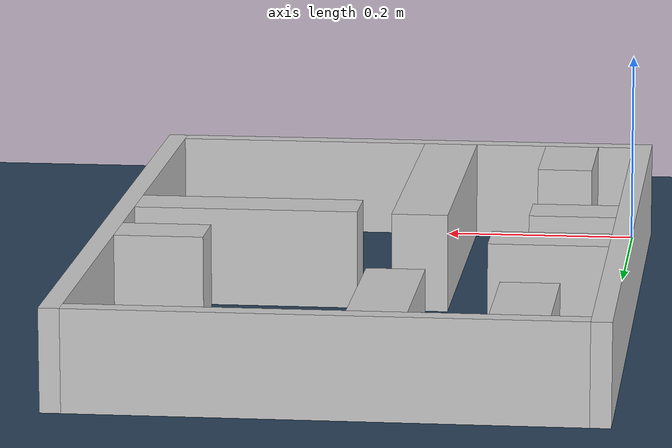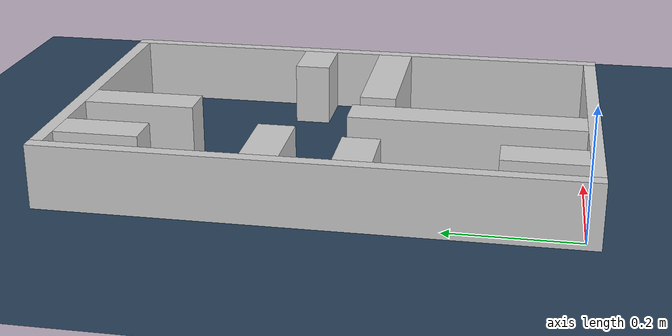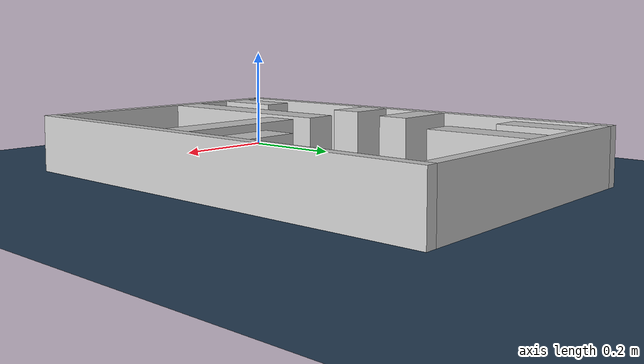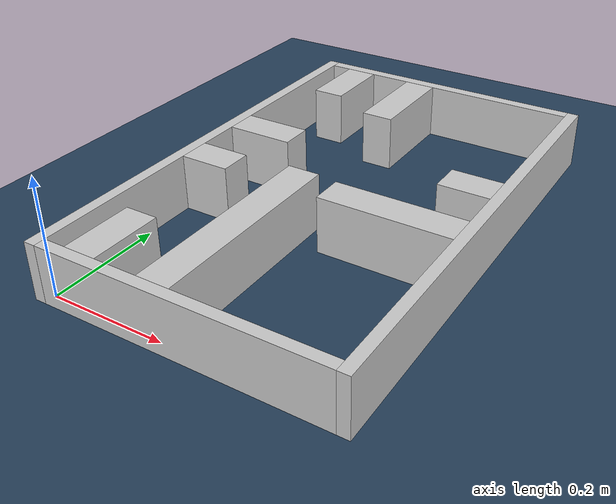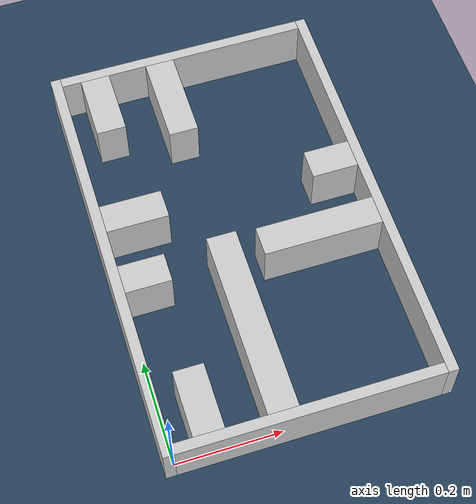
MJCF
<?xml version="1.0" ?>
<mujoco model="generated_real_template">
  <compiler angle="degree"/>
  <option timestep="0.002" integrator="implicitfast" iterations="100" cone="elliptic"/>
  <default>
    <geom density="1"/>
  </default>
  <asset>
    <texture builtin="gradient" height="3072" rgb1="0.3 0.5 0.7" rgb2="0 0 0" type="skybox" width="512"/>
    <texture builtin="checker" height="300" mark="edge" markrgb="0.8 0.8 0.8" name="groundplane" rgb1="0.2 0.3 0.4" rgb2="0.1 0.2 0.3" type="2d" width="300"/>
    <material name="groundplane" reflectance="0.2" texrepeat="5 5" texture="groundplane" texuniform="true"/>
  </asset>
  <worldbody>
    <light dir="0 0 -1" directional="true" pos="0 0 1.5"/>
    <geom name="floor" type="plane" condim="4" friction="0.5 0.005 0.001" material="groundplane" size="0 0 0.05"/>
    <body name="walls">
      <geom name="wall_boundary_left" type="box" condim="4" friction="1.0 0.005 0.0001" rgba="0.8 0.8 0.8 1" pos="-0.010000 0.387500 0.050000" euler="0 0 0.000000" size="0.010000 0.407500 0.050000"/>
      <geom name="wall_boundary_right" type="box" condim="4" friction="1.0 0.005 0.0001" rgba="0.8 0.8 0.8 1" pos="0.500000 0.387500 0.050000" euler="0 0 0.000000" size="0.010000 0.407500 0.050000"/>
      <geom name="wall_boundary_bottom" type="box" condim="4" friction="1.0 0.005 0.0001" rgba="0.8 0.8 0.8 1" pos="0.245000 -0.010000 0.050000" euler="0 0 0.000000" size="0.245000 0.010000 0.050000"/>
      <geom name="wall_boundary_top" type="box" condim="4" friction="1.0 0.005 0.0001" rgba="0.8 0.8 0.8 1" pos="0.245000 0.785000 0.050000" euler="0 0 0.000000" size="0.245000 0.010000 0.050000"/>
      <geom name="wall_inner_1_1" type="box" condim="4" friction="1.0 0.005 0.0001" rgba="0.8 0.8 0.8 1" pos="0.065900 0.062317 0.050000" euler="0 0 90.000000" size="0.062317 0.028500 0.050000"/>
      <geom name="wall_inner_1_2" type="box" condim="4" friction="1.0 0.005 0.0001" rgba="0.8 0.8 0.8 1" pos="0.065900 0.710336 0.050000" euler="0 0 90.000000" size="0.064664 0.028500 0.050000"/>
      <geom name="wall_inner_2_1" type="box" condim="4" friction="1.0 0.005 0.0001" rgba="0.8 0.8 0.8 1" pos="0.197854 0.179673 0.050000" euler="0 0 90.000000" size="0.179673 0.028500 0.050000"/>
      <geom name="wall_inner_2_2" type="box" condim="4" friction="1.0 0.005 0.0001" rgba="0.8 0.8 0.8 1" pos="0.197854 0.688043 0.050000" euler="0 0 90.000000" size="0.086957 0.028500 0.050000"/>
      <geom name="wall_inner_3_1" type="box" condim="4" friction="1.0 0.005 0.0001" rgba="0.8 0.8 0.8 1" pos="0.043856 0.324407 0.050000" euler="0 0 0.000000" size="0.043856 0.028500 0.050000"/>
      <geom name="wall_inner_3_2" type="box" condim="4" friction="1.0 0.005 0.0001" rgba="0.8 0.8 0.8 1" pos="0.375998 0.324407 0.050000" euler="0 0 0.000000" size="0.114002 0.028500 0.050000"/>
      <geom name="wall_inner_4_1" type="box" condim="4" friction="1.0 0.005 0.0001" rgba="0.8 0.8 0.8 1" pos="0.059515 0.456239 0.050000" euler="0 0 0.000000" size="0.059515 0.028500 0.050000"/>
      <geom name="wall_inner_4_2" type="box" condim="4" friction="1.0 0.005 0.0001" rgba="0.8 0.8 0.8 1" pos="0.445397 0.456239 0.050000" euler="0 0 0.000000" size="0.044603 0.028500 0.050000"/>
    </body>
  </worldbody>
</mujoco>
